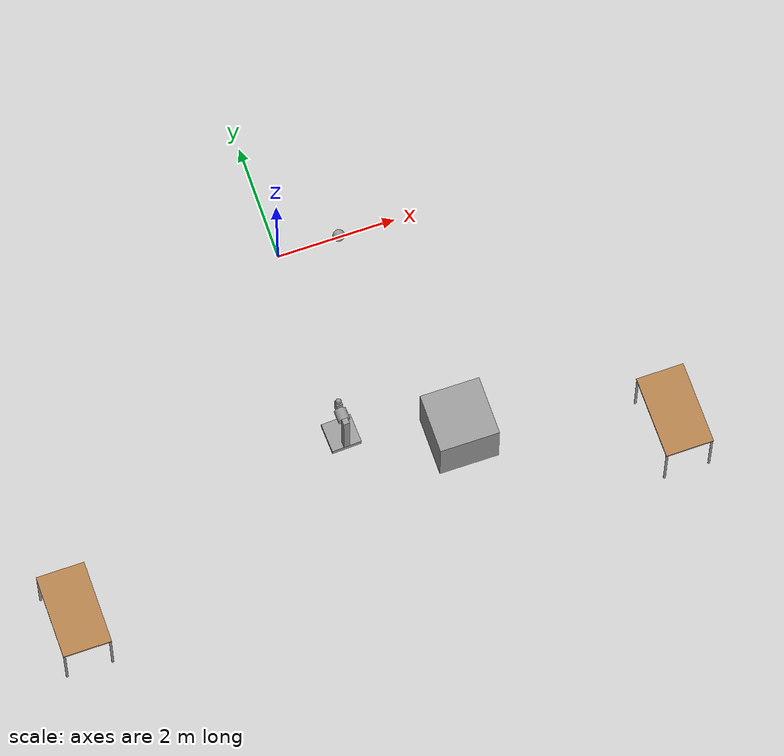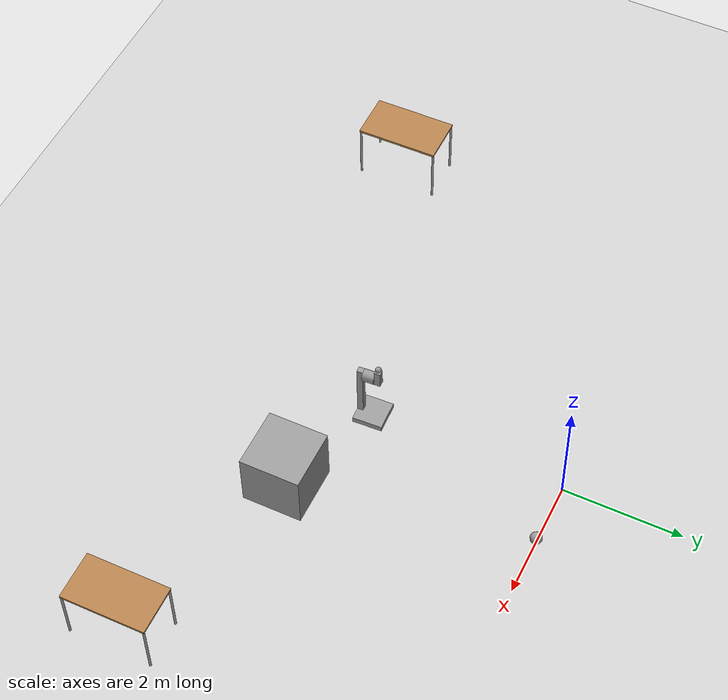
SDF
<sdf version="1.6">
 <world name="default">
  <model name="ground_plane">
   <static>1</static>
   <link name="link">
    <collision name="collision">
     <geometry><plane><normal>0 0 1</normal><size>100 100</size></plane></geometry>
     <surface><friction><ode><mu>100</mu><mu2>50</mu2></ode></friction></surface>
    </collision>
    <visual name="visual">
     <cast_shadows>0</cast_shadows>
     <geometry><plane><normal>0 0 1</normal><size>100 100</size></plane></geometry>
     <material>
      <script><uri>file://media/materials/scripts/gazebo.material</uri><name>Gazebo/Grey</name></script>
     </material>
    </visual>
   </link>
  </model>
  <model name="my_manipulator_3">
   <link name="link_6">
    <pose>0 0.19001 -0.18999 0 -0 0</pose>
    <inertial>
     <mass>1</mass>
     <inertia>
      <ixx>0.166667</ixx>
      <ixy>0</ixy>
      <ixz>0</ixz>
      <iyy>0.166667</iyy>
      <iyz>0</iyz>
      <izz>0.166667</izz>
     </inertia>
    </inertial>
    <visual name="visual">
     <geometry><box><size>0.1 0.1 1</size></box></geometry>
     <material>
      <lighting>1</lighting>
      <script><uri>file://media/materials/scripts/gazebo.material</uri><name>Gazebo/Grey</name></script>
      <ambient>0.3 0.3 0.3 1</ambient>
      <diffuse>0.7 0.7 0.7 1</diffuse>
      <specular>0.01 0.01 0.01 1</specular>
      <emissive>0 0 0 1</emissive>
      <shader type="vertex"><normal_map>__default__</normal_map></shader>
     </material>
    </visual>
    <visual name="ModelPreview_3::link_6::visual_1">
     <geometry><box><size>0.1 0.1 1</size></box></geometry>
     <material>
      <lighting>1</lighting>
      <script><uri>file://media/materials/scripts/gazebo.material</uri><name>Gazebo/Grey</name></script>
      <ambient>0.3 0.3 0.3 1</ambient>
      <diffuse>0.7 0.7 0.7 1</diffuse>
      <specular>0.01 0.01 0.01 1</specular>
      <emissive>0 0 0 1</emissive>
      <shader type="vertex"><normal_map>__default__</normal_map></shader>
     </material>
    </visual>
    <collision name="collision">
     <geometry><box><size>0.1 0.1 1</size></box></geometry>
     <surface>
      <friction>
       <ode><mu>1</mu><mu2>1</mu2><fdir1>0 0 0</fdir1><slip1>0</slip1><slip2>0</slip2></ode>
       <torsional>
        <coefficient>1</coefficient>
        <patch_radius>0</patch_radius>
        <surface_radius>0</surface_radius>
        <use_patch_radius>1</use_patch_radius>
        <ode><slip>0</slip></ode>
       </torsional>
      </friction>
      <bounce><restitution_coefficient>0</restitution_coefficient><threshold>1e+06</threshold></bounce>
      <contact>
       <collide_without_contact>0</collide_without_contact>
       <collide_without_contact_bitmask>1</collide_without_contact_bitmask>
       <collide_bitmask>1</collide_bitmask>
       <ode>
        <soft_cfm>0</soft_cfm>
        <soft_erp>0.2</soft_erp>
        <kp>1e+13</kp>
        <kd>1</kd>
        <max_vel>0.01</max_vel>
        <min_depth>0</min_depth>
       </ode>
       <bullet>
        <split_impulse>1</split_impulse>
        <split_impulse_penetration_threshold>-0.01</split_impulse_penetration_threshold>
        <soft_cfm>0</soft_cfm>
        <soft_erp>0.2</soft_erp>
        <kp>1e+13</kp>
        <kd>1</kd>
       </bullet>
      </contact>
     </surface>
    </collision>
   </link>
   <link name="link_6_clone">
    <pose>0 -0.11001 0.259991 0 -0 0</pose>
    <inertial>
     <mass>1</mass>
     <inertia>
      <ixx>0.166667</ixx>
      <ixy>0</ixy>
      <ixz>0</ixz>
      <iyy>0.166667</iyy>
      <iyz>0</iyz>
      <izz>0.166667</izz>
     </inertia>
    </inertial>
    <visual name="visual">
     <geometry><box><size>0.1 0.1 0.3</size></box></geometry>
     <material>
      <lighting>1</lighting>
      <script><uri>file://media/materials/scripts/gazebo.material</uri><name>Gazebo/Grey</name></script>
      <ambient>0.3 0.3 0.3 1</ambient>
      <diffuse>0.7 0.7 0.7 1</diffuse>
      <specular>0.01 0.01 0.01 1</specular>
      <emissive>0 0 0 1</emissive>
      <shader type="vertex"><normal_map>__default__</normal_map></shader>
     </material>
    </visual>
    <collision name="collision">
     <geometry><box><size>0.1 0.1 0.3</size></box></geometry>
     <surface>
      <friction>
       <ode><mu>1</mu><mu2>1</mu2><fdir1>0 0 0</fdir1><slip1>0</slip1><slip2>0</slip2></ode>
       <torsional>
        <coefficient>1</coefficient>
        <patch_radius>0</patch_radius>
        <surface_radius>0</surface_radius>
        <use_patch_radius>1</use_patch_radius>
        <ode><slip>0</slip></ode>
       </torsional>
      </friction>
      <bounce><restitution_coefficient>0</restitution_coefficient><threshold>1e+06</threshold></bounce>
      <contact>
       <collide_without_contact>0</collide_without_contact>
       <collide_without_contact_bitmask>1</collide_without_contact_bitmask>
       <collide_bitmask>1</collide_bitmask>
       <ode>
        <soft_cfm>0</soft_cfm>
        <soft_erp>0.2</soft_erp>
        <kp>1e+13</kp>
        <kd>1</kd>
        <max_vel>0.01</max_vel>
        <min_depth>0</min_depth>
       </ode>
       <bullet>
        <split_impulse>1</split_impulse>
        <split_impulse_penetration_threshold>-0.01</split_impulse_penetration_threshold>
        <soft_cfm>0</soft_cfm>
        <soft_erp>0.2</soft_erp>
        <kp>1e+13</kp>
        <kd>1</kd>
       </bullet>
      </contact>
     </surface>
    </collision>
   </link>
   <link name="link_7">
    <pose>0 -0.00999 -0.73999 0 -0 0</pose>
    <inertial>
     <mass>1</mass>
     <inertia>
      <ixx>0.166667</ixx>
      <ixy>0</ixy>
      <ixz>0</ixz>
      <iyy>0.166667</iyy>
      <iyz>0</iyz>
      <izz>0.166667</izz>
     </inertia>
    </inertial>
    <visual name="visual">
     <geometry><box><size>0.5 0.5 0.1</size></box></geometry>
     <material>
      <lighting>1</lighting>
      <script><uri>file://media/materials/scripts/gazebo.material</uri><name>Gazebo/Grey</name></script>
      <ambient>0.3 0.3 0.3 1</ambient>
      <diffuse>0.7 0.7 0.7 1</diffuse>
      <specular>0.01 0.01 0.01 1</specular>
      <emissive>0 0 0 1</emissive>
      <shader type="vertex"><normal_map>__default__</normal_map></shader>
     </material>
    </visual>
    <collision name="collision">
     <geometry><box><size>0.5 0.5 0.1</size></box></geometry>
     <surface>
      <friction>
       <ode><mu>1</mu><mu2>1</mu2><fdir1>0 0 0</fdir1><slip1>0</slip1><slip2>0</slip2></ode>
       <torsional>
        <coefficient>1</coefficient>
        <patch_radius>0</patch_radius>
        <surface_radius>0</surface_radius>
        <use_patch_radius>1</use_patch_radius>
        <ode><slip>0</slip></ode>
       </torsional>
      </friction>
      <bounce><restitution_coefficient>0</restitution_coefficient><threshold>1e+06</threshold></bounce>
      <contact>
       <collide_without_contact>0</collide_without_contact>
       <collide_without_contact_bitmask>1</collide_without_contact_bitmask>
       <collide_bitmask>1</collide_bitmask>
       <ode>
        <soft_cfm>0</soft_cfm>
        <soft_erp>0.2</soft_erp>
        <kp>1e+13</kp>
        <kd>1</kd>
        <max_vel>0.01</max_vel>
        <min_depth>0</min_depth>
       </ode>
       <bullet>
        <split_impulse>1</split_impulse>
        <split_impulse_penetration_threshold>-0.01</split_impulse_penetration_threshold>
        <soft_cfm>0</soft_cfm>
        <soft_erp>0.2</soft_erp>
        <kp>1e+13</kp>
        <kd>1</kd>
       </bullet>
      </contact>
     </surface>
    </collision>
   </link>
   <link name="link_8">
    <pose>0 0.04 0.21 -1.5707 0 0</pose>
    <inertial>
     <mass>1</mass>
     <inertia><ixx>0.145833</ixx><ixy>0</ixy><ixz>0</ixz><iyy>0.145833</iyy><iyz>0</iyz><izz>0.125</izz></inertia>
    </inertial>
    <visual name="visual">
     <geometry><cylinder><radius>0.1</radius><length>0.2</length></cylinder></geometry>
     <material>
      <lighting>1</lighting>
      <script><uri>file://media/materials/scripts/gazebo.material</uri><name>Gazebo/Grey</name></script>
      <ambient>0.3 0.3 0.3 1</ambient>
      <diffuse>0.7 0.7 0.7 1</diffuse>
      <specular>0.01 0.01 0.01 1</specular>
      <emissive>0 0 0 1</emissive>
      <shader type="vertex"><normal_map>__default__</normal_map></shader>
     </material>
    </visual>
    <collision name="collision">
     <geometry><cylinder><radius>0.1</radius><length>0.2</length></cylinder></geometry>
     <surface>
      <friction>
       <ode><mu>1</mu><mu2>1</mu2><fdir1>0 0 0</fdir1><slip1>0</slip1><slip2>0</slip2></ode>
       <torsional>
        <coefficient>1</coefficient>
        <patch_radius>0</patch_radius>
        <surface_radius>0</surface_radius>
        <use_patch_radius>1</use_patch_radius>
        <ode><slip>0</slip></ode>
       </torsional>
      </friction>
      <bounce><restitution_coefficient>0</restitution_coefficient><threshold>1e+06</threshold></bounce>
      <contact>
       <collide_without_contact>0</collide_without_contact>
       <collide_without_contact_bitmask>1</collide_without_contact_bitmask>
       <collide_bitmask>1</collide_bitmask>
       <ode>
        <soft_cfm>0</soft_cfm>
        <soft_erp>0.2</soft_erp>
        <kp>1e+13</kp>
        <kd>1</kd>
        <max_vel>0.01</max_vel>
        <min_depth>0</min_depth>
       </ode>
       <bullet>
        <split_impulse>1</split_impulse>
        <split_impulse_penetration_threshold>-0.01</split_impulse_penetration_threshold>
        <soft_cfm>0</soft_cfm>
        <soft_erp>0.2</soft_erp>
        <kp>1e+13</kp>
        <kd>1</kd>
       </bullet>
      </contact>
     </surface>
    </collision>
   </link>
   <link name="link_9">
    <pose>0 -0.11001 0.459991 0 -0 0</pose>
    <inertial>
     <mass>1</mass>
     <inertia><ixx>0.1</ixx><ixy>0</ixy><ixz>0</ixz><iyy>0.1</iyy><iyz>0</iyz><izz>0.1</izz></inertia>
    </inertial>
    <visual name="visual">
     <geometry><sphere><radius>0.05</radius></sphere></geometry>
     <material>
      <lighting>1</lighting>
      <script><uri>file://media/materials/scripts/gazebo.material</uri><name>Gazebo/Grey</name></script>
      <ambient>0.3 0.3 0.3 1</ambient>
      <diffuse>0.7 0.7 0.7 1</diffuse>
      <specular>0.01 0.01 0.01 1</specular>
      <emissive>0 0 0 1</emissive>
      <shader type="vertex"><normal_map>__default__</normal_map></shader>
     </material>
    </visual>
    <collision name="collision">
     <geometry><sphere><radius>0.05</radius></sphere></geometry>
     <surface>
      <friction>
       <ode><mu>1</mu><mu2>1</mu2><fdir1>0 0 0</fdir1><slip1>0</slip1><slip2>0</slip2></ode>
       <torsional>
        <coefficient>1</coefficient>
        <patch_radius>0</patch_radius>
        <surface_radius>0</surface_radius>
        <use_patch_radius>1</use_patch_radius>
        <ode><slip>0</slip></ode>
       </torsional>
      </friction>
      <bounce><restitution_coefficient>0</restitution_coefficient><threshold>1e+06</threshold></bounce>
      <contact>
       <collide_without_contact>0</collide_without_contact>
       <collide_without_contact_bitmask>1</collide_without_contact_bitmask>
       <collide_bitmask>1</collide_bitmask>
       <ode>
        <soft_cfm>0</soft_cfm>
        <soft_erp>0.2</soft_erp>
        <kp>1e+13</kp>
        <kd>1</kd>
        <max_vel>0.01</max_vel>
        <min_depth>0</min_depth>
       </ode>
       <bullet>
        <split_impulse>1</split_impulse>
        <split_impulse_penetration_threshold>-0.01</split_impulse_penetration_threshold>
        <soft_cfm>0</soft_cfm>
        <soft_erp>0.2</soft_erp>
        <kp>1e+13</kp>
        <kd>1</kd>
       </bullet>
      </contact>
     </surface>
    </collision>
   </link>
   <joint name="link_6_JOINT_9" type="revolute">
    <parent>link_6</parent>
    <child>link_8</child>
    <axis>
     <xyz>0 0 -1</xyz>
     <use_parent_model_frame>0</use_parent_model_frame>
     <limit>
      <lower>-1.79769e+308</lower>
      <upper>1.79769e+308</upper>
      <effort>-1</effort>
      <velocity>-1</velocity>
     </limit>
     <dynamics>
      <spring_reference>0</spring_reference>
      <spring_stiffness>0</spring_stiffness>
      <damping>0</damping>
      <friction>0</friction>
     </dynamics>
    </axis>
    <physics>
     <ode><limit><cfm>0</cfm><erp>0.2</erp></limit><suspension><cfm>0</cfm><erp>0.2</erp></suspension></ode>
    </physics>
   </joint>
   <joint name="link_6_clone_JOINT_11" type="fixed">
    <parent>link_6_clone</parent>
    <child>link_9</child>
    <physics>
     <ode><limit><cfm>0</cfm><erp>0.2</erp></limit><suspension><cfm>0</cfm><erp>0.2</erp></suspension></ode>
    </physics>
   </joint>
   <joint name="link_7_JOINT_8" type="fixed">
    <parent>link_7</parent>
    <child>link_6</child>
    <physics>
     <ode><limit><cfm>0</cfm><erp>0.2</erp></limit><suspension><cfm>0</cfm><erp>0.2</erp></suspension></ode>
    </physics>
   </joint>
   <joint name="link_8_JOINT_10" type="fixed">
    <parent>link_8</parent>
    <child>link_6_clone</child>
    <physics>
     <ode><limit><cfm>0</cfm><erp>0.2</erp></limit><suspension><cfm>0</cfm><erp>0.2</erp></suspension></ode>
    </physics>
   </joint>
   <static>0</static>
   <pose>-0.029907 -3.29805 0.78999 -1e-06 1e-06 -3.09763</pose>
  </model>
  <model name="table">
   <static>0</static>
   <link name="link">
    <collision name="surface">
     <pose>0 0 1 0 -0 0</pose>
     <geometry><box><size>1.5 0.8 0.03</size></box></geometry>
     <surface><friction><ode><mu>0.6</mu><mu2>0.6</mu2></ode></friction></surface>
    </collision>
    <visual name="visual1">
     <pose>0 0 1 0 -0 0</pose>
     <geometry><box><size>1.4 0.8 0.04</size></box></geometry>
     <material>
      <script><uri>file://media/materials/scripts/gazebo.material</uri><name>Gazebo/Wood</name></script>
     </material>
    </visual>
    <collision name="front_left_leg">
     <pose>0.68 0.38 0.5 0 -0 0</pose>
     <geometry><cylinder><radius>0.02</radius><length>1</length></cylinder></geometry>
    </collision>
    <visual name="front_left_leg">
     <pose>0.68 0.38 0.5 0 -0 0</pose>
     <geometry><cylinder><radius>0.02</radius><length>1</length></cylinder></geometry>
     <material>
      <script><uri>file://media/materials/scripts/gazebo.material</uri><name>Gazebo/Grey</name></script>
     </material>
    </visual>
    <collision name="front_right_leg">
     <pose>0.68 -0.38 0.5 0 -0 0</pose>
     <geometry><cylinder><radius>0.02</radius><length>1</length></cylinder></geometry>
    </collision>
    <visual name="front_right_leg">
     <pose>0.68 -0.38 0.5 0 -0 0</pose>
     <geometry><cylinder><radius>0.02</radius><length>1</length></cylinder></geometry>
     <material>
      <script><uri>file://media/materials/scripts/gazebo.material</uri><name>Gazebo/Grey</name></script>
     </material>
    </visual>
    <collision name="back_right_leg">
     <pose>-0.68 -0.38 0.5 0 -0 0</pose>
     <geometry><cylinder><radius>0.02</radius><length>1</length></cylinder></geometry>
    </collision>
    <visual name="back_right_leg">
     <pose>-0.68 -0.38 0.5 0 -0 0</pose>
     <geometry><cylinder><radius>0.02</radius><length>1</length></cylinder></geometry>
     <material>
      <script><uri>file://media/materials/scripts/gazebo.material</uri><name>Gazebo/Grey</name></script>
     </material>
    </visual>
    <collision name="back_left_leg">
     <pose>-0.68 0.38 0.5 0 -0 0</pose>
     <geometry><cylinder><radius>0.02</radius><length>1</length></cylinder></geometry>
    </collision>
    <visual name="back_left_leg">
     <pose>-0.68 0.38 0.5 0 -0 0</pose>
     <geometry><cylinder><radius>0.02</radius><length>1</length></cylinder></geometry>
     <material>
      <script><uri>file://media/materials/scripts/gazebo.material</uri><name>Gazebo/Grey</name></script>
     </material>
    </visual>
    <inertial>
     <inertia><ixx>1</ixx><ixy>0</ixy><ixz>0</ixz><iyy>1</iyy><iyz>0</iyz><izz>1</izz></inertia>
     <mass>1</mass>
    </inertial>
   </link>
   <pose>5.0249 -4.97261 -1e-06 0 -1e-06 1.57643</pose>
  </model>
  <model name="table_clone">
   <static>0</static>
   <link name="link">
    <collision name="surface">
     <pose>0 0 1 0 -0 0</pose>
     <geometry><box><size>1.5 0.8 0.03</size></box></geometry>
     <surface><friction><ode><mu>0.6</mu><mu2>0.6</mu2></ode></friction></surface>
    </collision>
    <visual name="visual1">
     <pose>0 0 1 0 -0 0</pose>
     <geometry><box><size>1.4 0.8 0.04</size></box></geometry>
     <material>
      <script><uri>file://media/materials/scripts/gazebo.material</uri><name>Gazebo/Wood</name></script>
     </material>
    </visual>
    <collision name="front_left_leg">
     <pose>0.68 0.38 0.5 0 -0 0</pose>
     <geometry><cylinder><radius>0.02</radius><length>1</length></cylinder></geometry>
    </collision>
    <visual name="front_left_leg">
     <pose>0.68 0.38 0.5 0 -0 0</pose>
     <geometry><cylinder><radius>0.02</radius><length>1</length></cylinder></geometry>
     <material>
      <script><uri>file://media/materials/scripts/gazebo.material</uri><name>Gazebo/Grey</name></script>
     </material>
    </visual>
    <collision name="front_right_leg">
     <pose>0.68 -0.38 0.5 0 -0 0</pose>
     <geometry><cylinder><radius>0.02</radius><length>1</length></cylinder></geometry>
    </collision>
    <visual name="front_right_leg">
     <pose>0.68 -0.38 0.5 0 -0 0</pose>
     <geometry><cylinder><radius>0.02</radius><length>1</length></cylinder></geometry>
     <material>
      <script><uri>file://media/materials/scripts/gazebo.material</uri><name>Gazebo/Grey</name></script>
     </material>
    </visual>
    <collision name="back_right_leg">
     <pose>-0.68 -0.38 0.5 0 -0 0</pose>
     <geometry><cylinder><radius>0.02</radius><length>1</length></cylinder></geometry>
    </collision>
    <visual name="back_right_leg">
     <pose>-0.68 -0.38 0.5 0 -0 0</pose>
     <geometry><cylinder><radius>0.02</radius><length>1</length></cylinder></geometry>
     <material>
      <script><uri>file://media/materials/scripts/gazebo.material</uri><name>Gazebo/Grey</name></script>
     </material>
    </visual>
    <collision name="back_left_leg">
     <pose>-0.68 0.38 0.5 0 -0 0</pose>
     <geometry><cylinder><radius>0.02</radius><length>1</length></cylinder></geometry>
    </collision>
    <visual name="back_left_leg">
     <pose>-0.68 0.38 0.5 0 -0 0</pose>
     <geometry><cylinder><radius>0.02</radius><length>1</length></cylinder></geometry>
     <material>
      <script><uri>file://media/materials/scripts/gazebo.material</uri><name>Gazebo/Grey</name></script>
     </material>
    </visual>
    <inertial>
     <inertia><ixx>1</ixx><ixy>0</ixy><ixz>0</ixz><iyy>1</iyy><iyz>0</iyz><izz>1</izz></inertia>
     <mass>1</mass>
    </inertial>
   </link>
   <pose>-5.08395 -5.07811 -7e-06 2e-06 -4e-06 1.57564</pose>
  </model>
  <model name="unit_box_0_3">
   <pose>1.75361 -3.93006 0.499995 0 1e-05 0</pose>
   <link name="link">
    <inertial>
     <mass>1</mass>
     <inertia>
      <ixx>0.166667</ixx>
      <ixy>0</ixy>
      <ixz>0</ixz>
      <iyy>0.166667</iyy>
      <iyz>0</iyz>
      <izz>0.166667</izz>
     </inertia>
    </inertial>
    <collision name="collision"><geometry><box><size>1 1 1</size></box></geometry></collision>
    <visual name="visual">
     <geometry><box><size>1 1 1</size></box></geometry>
     <material>
      <script><name>Gazebo/Grey</name><uri>file://media/materials/scripts/gazebo.material</uri></script>
     </material>
    </visual>
   </link>
  </model>
  <model name="my_ball">
   <link name="link_0">
    <inertial>
     <mass>1</mass>
     <inertia><ixx>0.1</ixx><ixy>0</ixy><ixz>0</ixz><iyy>0.1</iyy><iyz>0</iyz><izz>0.1</izz></inertia>
    </inertial>
    <visual name="visual">
     <geometry><sphere><radius>0.1</radius></sphere></geometry>
     <material>
      <lighting>1</lighting>
      <script><uri>file://media/materials/scripts/gazebo.material</uri><name>Gazebo/Grey</name></script>
      <ambient>1 1 1 1</ambient>
      <diffuse>1 1 1 1</diffuse>
      <specular>1 1 1 1</specular>
      <emissive>1 1 1 1</emissive>
      <shader type="vertex"><normal_map>__default__</normal_map></shader>
     </material>
    </visual>
    <collision name="collision">
     <geometry><sphere><radius>0.1</radius></sphere></geometry>
     <surface>
      <friction>
       <ode><mu>1</mu><mu2>1</mu2><fdir1>0 0 0</fdir1><slip1>0</slip1><slip2>0</slip2></ode>
       <torsional>
        <coefficient>1</coefficient>
        <patch_radius>0</patch_radius>
        <surface_radius>0</surface_radius>
        <use_patch_radius>1</use_patch_radius>
        <ode><slip>0</slip></ode>
       </torsional>
      </friction>
      <bounce><restitution_coefficient>0</restitution_coefficient><threshold>1e+06</threshold></bounce>
      <contact>
       <collide_without_contact>0</collide_without_contact>
       <collide_without_contact_bitmask>1</collide_without_contact_bitmask>
       <collide_bitmask>1</collide_bitmask>
       <ode>
        <soft_cfm>0</soft_cfm>
        <soft_erp>0.2</soft_erp>
        <kp>1e+13</kp>
        <kd>1</kd>
        <max_vel>0.01</max_vel>
        <min_depth>0</min_depth>
       </ode>
       <bullet>
        <split_impulse>1</split_impulse>
        <split_impulse_penetration_threshold>-0.01</split_impulse_penetration_threshold>
        <soft_cfm>0</soft_cfm>
        <soft_erp>0.2</soft_erp>
        <kp>1e+13</kp>
        <kd>1</kd>
       </bullet>
      </contact>
     </surface>
    </collision>
   </link>
   <static>0</static>
   <pose>1.04106 -0.009798 0.1 0 -0 0</pose>
  </model>
 </world>
</sdf>
